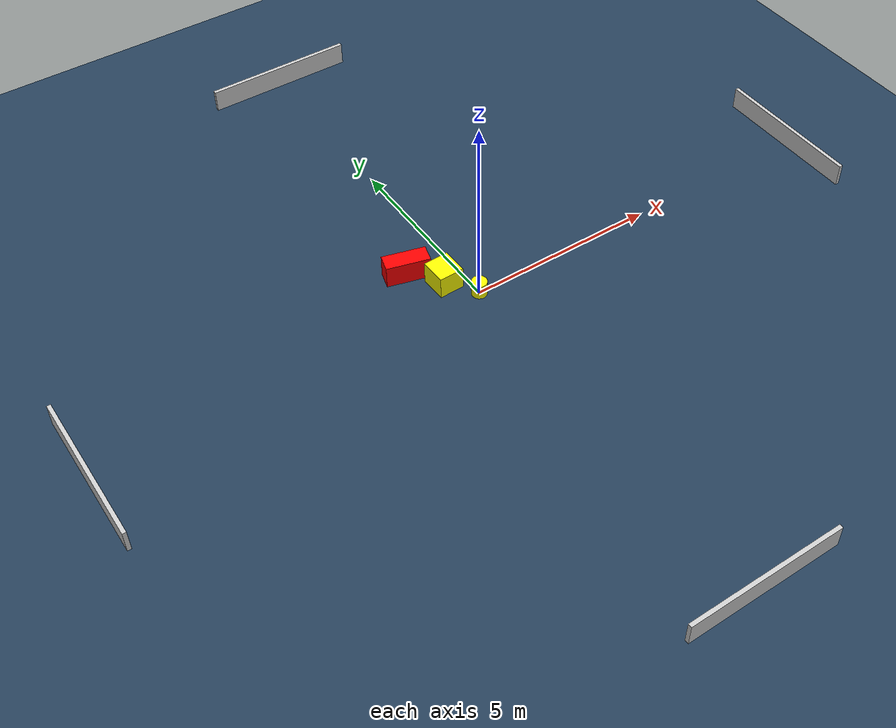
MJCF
<?xml version="1.0" ?>
<mujoco model="generated_environment">
  <option timestep="0.01" integrator="RK4" cone="elliptic"/>
  <default>
    <geom density="1"/>
  </default>
  <asset>
    <texture builtin="gradient" height="3072" name="skybox" rgb1="0.3 0.5 0.7" rgb2="0 0 0" type="skybox" width="512"/>
    <texture builtin="checker" height="300" name="groundplane" rgb1="0.2 0.3 0.4" rgb2="0.1 0.2 0.3" type="2d" width="300"/>
    <material name="groundplane" reflectance="0.2" texrepeat="5 5" texture="groundplane"/>
  </asset>
  <worldbody>
    <light dir="0 0 -1" directional="true" pos="0 0 1.5"/>
    <geom condim="3" friction="0.5 0.005 0.001" material="groundplane" name="floor" pos="0 0 0" size="0 0 0.05" type="plane"/>
    <body name="walls">
      <geom name="wall_1" condim="4" pos="-10.0 0.0 0.3" rgba="0.800000011920929 0.800000011920929 0.800000011920929 1.0" size="0.05 2.0 0.3" type="box"/>
      <geom name="wall_2" condim="4" pos="10.0 0.0 0.3" rgba="0.800000011920929 0.800000011920929 0.800000011920929 1.0" size="0.05 2.0 0.3" type="box"/>
      <geom name="wall_3" condim="4" pos="0.0 -10.0 0.3" rgba="0.800000011920929 0.800000011920929 0.800000011920929 1.0" size="2.0 0.05 0.3" type="box"/>
      <geom name="wall_4" condim="4" pos="0.0 10.0 0.3" rgba="0.800000011920929 0.800000011920929 0.800000011920929 1.0" size="2.0 0.05 0.3" type="box"/>
    </body>
    <body name="robot">
      <joint name="joint_x" type="slide" pos="0 0 0" axis="1 0 0"/>
      <joint name="joint_y" type="slide" pos="0 0 0" axis="0 1 0"/>
      <geom name="robot" type="cylinder" pos="0.0 0.0 0.2" size="0.2 0.2 0.0" mass="5.0" friction="1.0 0.005 0.0001" condim="4" rgba="1.0 1.0 0.0 1.0"/>
    </body>
    <body name="obstacle_1_movable">
      <geom name="obstacle_1_movable" condim="4" pos="-0.5345443832809209 0.7416370054862618 0.3" euler="0 0 271.68505315912546" friction="0.0 0.005 0.001" rgba="1.0 1.0 0.0 1.0" size="0.3453115720858809 0.3278677819336725 0.3" type="box" mass="0.1"/>
      <joint type="free"/>
    </body>
    <body name="obstacle_2_static">
      <geom name="obstacle_2_static" condim="4" pos="-1.1296395473264151 1.4974034064292743 0.3" euler="0 0 164.6276298356358" friction="0.0 0.005 0.001" rgba="1.0 0.0 0.0 1.0" size="0.5623638631405417 0.2265876641034092 0.3" type="box"/>
    </body>
  </worldbody>
  <actuator>
    <motor name="actuator_x" joint="joint_x" gear="1" ctrlrange="-1 1"/>
    <motor name="actuator_y" joint="joint_y" gear="1" ctrlrange="-1 1"/>
  </actuator>
</mujoco>
